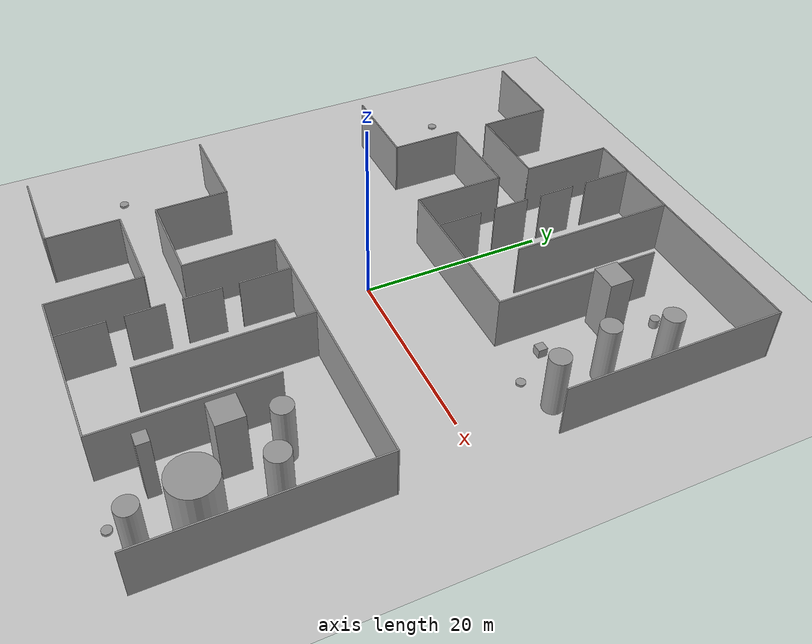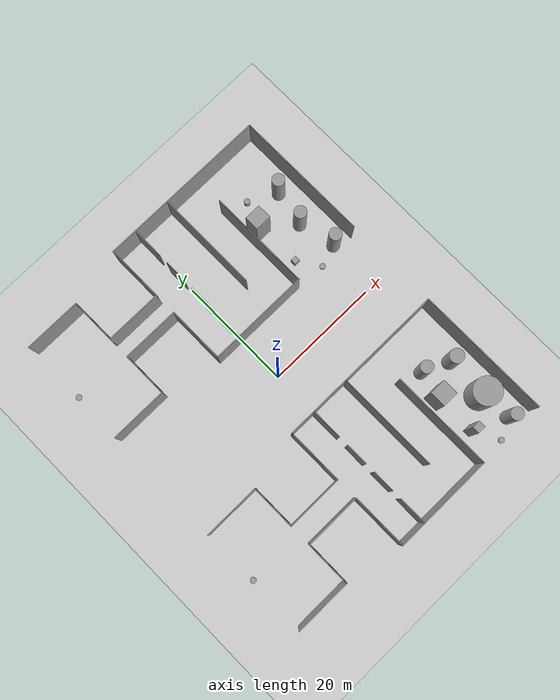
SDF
<sdf version="1.6">
 <world name="default">
  <light name="sun" type="directional">
   <pose>0 0 10 0 -0 0</pose>
   <diffuse>0.8 0.8 0.8 1</diffuse>
   <specular>0.2 0.2 0.2 1</specular>
   <attenuation>
    <range>1000</range>
    <constant>0.9</constant>
    <linear>0.01</linear>
    <quadratic>0.001</quadratic>
   </attenuation>
   <direction>-0.5 0.1 -0.9</direction>
  </light>
  <model name="ground_plane">
   <static>1</static>
   <link name="link">
    <collision name="collision">
     <geometry><plane><normal>0 0 1</normal><size>100 100</size></plane></geometry>
     <surface>
      <contact><collide_bitmask>65535</collide_bitmask></contact>
      <friction><ode><mu>100</mu><mu2>50</mu2></ode></friction>
     </surface>
    </collision>
    <visual name="visual">
     <cast_shadows>0</cast_shadows>
     <geometry><plane><normal>0 0 1</normal><size>100 100</size></plane></geometry>
     <material>
      <script><uri>file://media/materials/scripts/gazebo.material</uri><name>Gazebo/Grey</name></script>
     </material>
    </visual>
   </link>
  </model>
  <gravity>0 0 -9.8</gravity>
  <magnetic_field>6e-06 2.3e-05 -4.2e-05</magnetic_field>
  <atmosphere type="adiabatic"/>
  <physics name="default_physics" default="0" type="ode">
   <max_step_size>0.001</max_step_size>
   <real_time_factor>1</real_time_factor>
   <real_time_update_rate>1000</real_time_update_rate>
  </physics>
  <scene><ambient>0.4 0.4 0.4 1</ambient><background>0.7 0.7 0.7 1</background><shadows>1</shadows></scene>
  <spherical_coordinates>
   <surface_model>EARTH_WGS84</surface_model>
   <latitude_deg>0</latitude_deg>
   <longitude_deg>0</longitude_deg>
   <elevation>0</elevation>
   <heading_deg>0</heading_deg>
  </spherical_coordinates>
  <model name="train_0">
   <pose>0 20 0 0 -0 0</pose>
   <link name="Wall_11">
    <collision name="Wall_11_Collision">
     <geometry><box><size>10 0.15 6</size></box></geometry>
     <pose>0 0 3 0 -0 0</pose>
    </collision>
    <visual name="Wall_11_Visual">
     <pose>0 0 3 0 -0 0</pose>
     <geometry><box><size>10 0.15 6</size></box></geometry>
     <material>
      <script><uri>file://media/materials/scripts/gazebo.material</uri><name>Gazebo/Grey</name></script>
      <ambient>1 1 1 1</ambient>
     </material>
     <meta><layer>0</layer></meta>
    </visual>
    <pose>-9.98835 1.90003 0 0 -0 0</pose>
   </link>
   <link name="Wall_12">
    <collision name="Wall_12_Collision">
     <geometry><box><size>10 0.15 6</size></box></geometry>
     <pose>0 0 3 0 -0 0</pose>
    </collision>
    <visual name="Wall_12_Visual">
     <pose>0 0 3 0 -0 0</pose>
     <geometry><box><size>10 0.15 6</size></box></geometry>
     <material>
      <script><uri>file://media/materials/scripts/gazebo.material</uri><name>Gazebo/Grey</name></script>
      <ambient>1 1 1 1</ambient>
     </material>
     <meta><layer>0</layer></meta>
    </visual>
    <pose>-5.06335 6.82503 0 0 -0 1.5708</pose>
   </link>
   <link name="Wall_17">
    <collision name="Wall_17_Collision">
     <geometry><box><size>10.0469 0.15 6</size></box></geometry>
     <pose>0 0 3 0 -0 0</pose>
    </collision>
    <visual name="Wall_17_Visual">
     <pose>0 0 3 0 -0 0</pose>
     <geometry><box><size>10.0469 0.15 6</size></box></geometry>
     <material>
      <script><uri>file://media/materials/scripts/gazebo.material</uri><name>Gazebo/Grey</name></script>
      <ambient>1 1 1 1</ambient>
     </material>
     <meta><layer>0</layer></meta>
    </visual>
    <pose>-9.96489 -1.94997 0 0 -0 0</pose>
   </link>
   <link name="Wall_18">
    <collision name="Wall_18_Collision">
     <geometry><box><size>10 0.15 6</size></box></geometry>
     <pose>0 0 3 0 -0 0</pose>
    </collision>
    <visual name="Wall_18_Visual">
     <pose>0 0 3 0 -0 0</pose>
     <geometry><box><size>10 0.15 6</size></box></geometry>
     <material>
      <script><uri>file://media/materials/scripts/gazebo.material</uri><name>Gazebo/Grey</name></script>
      <ambient>1 1 1 1</ambient>
     </material>
     <meta><layer>0</layer></meta>
    </visual>
    <pose>-5.01199 -6.87497 0 0 0 -1.56989</pose>
   </link>
   <link name="Wall_26">
    <collision name="Wall_26_Collision">
     <geometry><box><size>5.5 0.15 6</size></box></geometry>
     <pose>0 0 3 0 -0 0</pose>
    </collision>
    <visual name="Wall_26_Visual">
     <pose>0 0 3 0 -0 0</pose>
     <geometry><box><size>5.5 0.15 6</size></box></geometry>
     <material>
      <script><uri>file://media/materials/scripts/gazebo.material</uri><name>Gazebo/Grey</name></script>
      <ambient>1 1 1 1</ambient>
     </material>
     <meta><layer>0</layer></meta>
    </visual>
    <pose>-0.299346 9.05303 0 0 0 -1.5708</pose>
   </link>
   <link name="Wall_28">
    <collision name="Wall_28_Collision">
     <geometry><box><size>4 0.15 6</size></box></geometry>
     <pose>0 0 3 0 -0 0</pose>
    </collision>
    <visual name="Wall_28_Visual">
     <pose>0 0 3 0 -0 0</pose>
     <geometry><box><size>4 0.15 6</size></box></geometry>
     <material>
      <script><uri>file://media/materials/scripts/gazebo.material</uri><name>Gazebo/Grey</name></script>
      <ambient>1 1 1 1</ambient>
     </material>
     <meta><layer>0</layer></meta>
    </visual>
    <pose>-0.299346 2.60303 0 0 0 -1.5708</pose>
   </link>
   <link name="Wall_30">
    <collision name="Wall_30_Collision">
     <geometry><box><size>4 0.15 6</size></box></geometry>
     <pose>0 0 3 0 -0 0</pose>
    </collision>
    <visual name="Wall_30_Visual">
     <pose>0 0 3 0 -0 0</pose>
     <geometry><box><size>4 0.15 6</size></box></geometry>
     <material>
      <script><uri>file://media/materials/scripts/gazebo.material</uri><name>Gazebo/Grey</name></script>
      <ambient>1 1 1 1</ambient>
     </material>
     <meta><layer>0</layer></meta>
    </visual>
    <pose>-0.299346 -3.09697 0 0 0 -1.5708</pose>
   </link>
   <link name="Wall_32">
    <collision name="Wall_32_Collision">
     <geometry><box><size>5 0.15 6</size></box></geometry>
     <pose>0 0 3 0 -0 0</pose>
    </collision>
    <visual name="Wall_32_Visual">
     <pose>0 0 3 0 -0 0</pose>
     <geometry><box><size>5 0.15 6</size></box></geometry>
     <material>
      <script><uri>file://media/materials/scripts/gazebo.material</uri><name>Gazebo/Grey</name></script>
      <ambient>1 1 1 1</ambient>
     </material>
     <meta><layer>0</layer></meta>
    </visual>
    <pose>-0.299346 -9.29697 0 0 0 -1.5708</pose>
   </link>
   <link name="Wall_35">
    <collision name="Wall_35_Collision">
     <geometry><box><size>18 0.15 6</size></box></geometry>
     <pose>0 0 3 0 -0 0</pose>
    </collision>
    <visual name="Wall_35_Visual">
     <pose>0 0 3 0 -0 0</pose>
     <geometry><box><size>18 0.15 6</size></box></geometry>
     <material>
      <script><uri>file://media/materials/scripts/gazebo.material</uri><name>Gazebo/Grey</name></script>
      <ambient>1 1 1 1</ambient>
     </material>
     <meta><layer>0</layer></meta>
    </visual>
    <pose>6.57165 2.82603 0 0 0 -1.5708</pose>
   </link>
   <link name="Wall_40">
    <collision name="Wall_40_Collision">
     <geometry><box><size>18 0.15 6</size></box></geometry>
     <pose>0 0 3 0 -0 0</pose>
    </collision>
    <visual name="Wall_40_Visual">
     <pose>0 0 3 0 -0 0</pose>
     <geometry><box><size>18 0.15 6</size></box></geometry>
     <material>
      <script><uri>file://media/materials/scripts/gazebo.material</uri><name>Gazebo/Grey</name></script>
      <ambient>1 1 1 1</ambient>
     </material>
     <meta><layer>0</layer></meta>
    </visual>
    <pose>12.5925 -2.87496 0 0 0 -1.5708</pose>
   </link>
   <link name="Wall_42">
    <collision name="Wall_42_Collision">
     <geometry><box><size>23.75 0.15 6</size></box></geometry>
     <pose>0 0 3 0 -0 0</pose>
    </collision>
    <visual name="Wall_42_Visual">
     <pose>0 0 3 0 -0 0</pose>
     <geometry><box><size>23.75 0.15 6</size></box></geometry>
     <material>
      <script><uri>file://media/materials/scripts/gazebo.material</uri><name>Gazebo/Grey</name></script>
      <ambient>1 1 1 1</ambient>
     </material>
     <meta><layer>0</layer></meta>
    </visual>
    <pose>24.7632 3.1e-05 0 0 -0 1.5708</pose>
   </link>
   <link name="Wall_43">
    <collision name="Wall_43_Collision">
     <geometry><box><size>29.9768 0.15 6</size></box></geometry>
     <pose>0 0 3 0 -0 0</pose>
    </collision>
    <visual name="Wall_43_Visual">
     <pose>0 0 3 0 -0 0</pose>
     <geometry><box><size>29.9768 0.15 6</size></box></geometry>
     <material>
      <script><uri>file://media/materials/scripts/gazebo.material</uri><name>Gazebo/Grey</name></script>
      <ambient>1 1 1 1</ambient>
     </material>
     <meta><layer>0</layer></meta>
    </visual>
    <pose>9.84993 11.8 0 0 -0 3.14159</pose>
   </link>
   <link name="Wall_46">
    <collision name="Wall_46_Collision">
     <geometry><box><size>17.75 0.15 6</size></box></geometry>
     <pose>0 0 3 0 -0 0</pose>
    </collision>
    <visual name="Wall_46_Visual">
     <pose>0 0 3 0 -0 0</pose>
     <geometry><box><size>17.75 0.15 6</size></box></geometry>
     <material>
      <script><uri>file://media/materials/scripts/gazebo.material</uri><name>Gazebo/Grey</name></script>
      <ambient>1 1 1 1</ambient>
     </material>
     <meta><layer>0</layer></meta>
    </visual>
    <pose>3.79245 -11.8 0 0 -0 0</pose>
   </link>
   <link name="Wall_5">
    <collision name="Wall_5_Collision">
     <geometry><box><size>10 0.15 6</size></box></geometry>
     <pose>0 0 3 0 -0 0</pose>
    </collision>
    <visual name="Wall_5_Visual">
     <pose>0 0 3 0 -0 0</pose>
     <geometry><box><size>10 0.15 6</size></box></geometry>
     <material>
      <script><uri>file://media/materials/scripts/gazebo.material</uri><name>Gazebo/Grey</name></script>
      <ambient>1 1 1 1</ambient>
     </material>
     <meta><layer>0</layer></meta>
    </visual>
    <pose>-19.8383 9.75003 0 0 -0 0</pose>
   </link>
   <link name="Wall_6">
    <collision name="Wall_6_Collision">
     <geometry><box><size>8 0.15 6</size></box></geometry>
     <pose>0 0 3 0 -0 0</pose>
    </collision>
    <visual name="Wall_6_Visual">
     <pose>0 0 3 0 -0 0</pose>
     <geometry><box><size>8 0.15 6</size></box></geometry>
     <material>
      <script><uri>file://media/materials/scripts/gazebo.material</uri><name>Gazebo/Grey</name></script>
      <ambient>1 1 1 1</ambient>
     </material>
     <meta><layer>0</layer></meta>
    </visual>
    <pose>-14.9133 5.82503 0 0 0 -1.5708</pose>
   </link>
   <link name="Wall_8">
    <collision name="Wall_8_Collision">
     <geometry><box><size>8 0.15 6</size></box></geometry>
     <pose>0 0 3 0 -0 0</pose>
    </collision>
    <visual name="Wall_8_Visual">
     <pose>0 0 3 0 -0 0</pose>
     <geometry><box><size>8 0.15 6</size></box></geometry>
     <material>
      <script><uri>file://media/materials/scripts/gazebo.material</uri><name>Gazebo/Grey</name></script>
      <ambient>1 1 1 1</ambient>
     </material>
     <meta><layer>0</layer></meta>
    </visual>
    <pose>-14.9133 -5.87497 0 0 0 -1.5708</pose>
   </link>
   <link name="Wall_9">
    <collision name="Wall_9_Collision">
     <geometry><box><size>10 0.15 6</size></box></geometry>
     <pose>0 0 3 0 -0 0</pose>
    </collision>
    <visual name="Wall_9_Visual">
     <pose>0 0 3 0 -0 0</pose>
     <geometry><box><size>10 0.15 6</size></box></geometry>
     <material>
      <script><uri>file://media/materials/scripts/gazebo.material</uri><name>Gazebo/Grey</name></script>
      <ambient>1 1 1 1</ambient>
     </material>
     <meta><layer>0</layer></meta>
    </visual>
    <pose>-19.8383 -9.79997 0 0 -0 3.14159</pose>
   </link>
   <static>1</static>
  </model>
  <model name="train_0_clone">
   <pose>0 -20 0 0 -0 0</pose>
   <link name="Wall_11">
    <collision name="Wall_11_Collision">
     <geometry><box><size>10 0.15 6</size></box></geometry>
     <pose>0 0 3 0 -0 0</pose>
    </collision>
    <visual name="Wall_11_Visual">
     <pose>0 0 3 0 -0 0</pose>
     <geometry><box><size>10 0.15 6</size></box></geometry>
     <material>
      <script><uri>file://media/materials/scripts/gazebo.material</uri><name>Gazebo/Grey</name></script>
      <ambient>1 1 1 1</ambient>
     </material>
     <meta><layer>0</layer></meta>
    </visual>
    <pose>-9.98835 1.90003 0 0 -0 0</pose>
   </link>
   <link name="Wall_12">
    <collision name="Wall_12_Collision">
     <geometry><box><size>10 0.15 6</size></box></geometry>
     <pose>0 0 3 0 -0 0</pose>
    </collision>
    <visual name="Wall_12_Visual">
     <pose>0 0 3 0 -0 0</pose>
     <geometry><box><size>10 0.15 6</size></box></geometry>
     <material>
      <script><uri>file://media/materials/scripts/gazebo.material</uri><name>Gazebo/Grey</name></script>
      <ambient>1 1 1 1</ambient>
     </material>
     <meta><layer>0</layer></meta>
    </visual>
    <pose>-5.06335 6.82503 0 0 -0 1.5708</pose>
   </link>
   <link name="Wall_17">
    <collision name="Wall_17_Collision">
     <geometry><box><size>10.0469 0.15 6</size></box></geometry>
     <pose>0 0 3 0 -0 0</pose>
    </collision>
    <visual name="Wall_17_Visual">
     <pose>0 0 3 0 -0 0</pose>
     <geometry><box><size>10.0469 0.15 6</size></box></geometry>
     <material>
      <script><uri>file://media/materials/scripts/gazebo.material</uri><name>Gazebo/Grey</name></script>
      <ambient>1 1 1 1</ambient>
     </material>
     <meta><layer>0</layer></meta>
    </visual>
    <pose>-9.96489 -1.94997 0 0 -0 0</pose>
   </link>
   <link name="Wall_18">
    <collision name="Wall_18_Collision">
     <geometry><box><size>10 0.15 6</size></box></geometry>
     <pose>0 0 3 0 -0 0</pose>
    </collision>
    <visual name="Wall_18_Visual">
     <pose>0 0 3 0 -0 0</pose>
     <geometry><box><size>10 0.15 6</size></box></geometry>
     <material>
      <script><uri>file://media/materials/scripts/gazebo.material</uri><name>Gazebo/Grey</name></script>
      <ambient>1 1 1 1</ambient>
     </material>
     <meta><layer>0</layer></meta>
    </visual>
    <pose>-5.01199 -6.87497 0 0 0 -1.56989</pose>
   </link>
   <link name="Wall_26">
    <collision name="Wall_26_Collision">
     <geometry><box><size>5.5 0.15 6</size></box></geometry>
     <pose>0 0 3 0 -0 0</pose>
    </collision>
    <visual name="Wall_26_Visual">
     <pose>0 0 3 0 -0 0</pose>
     <geometry><box><size>5.5 0.15 6</size></box></geometry>
     <material>
      <script><uri>file://media/materials/scripts/gazebo.material</uri><name>Gazebo/Grey</name></script>
      <ambient>1 1 1 1</ambient>
     </material>
     <meta><layer>0</layer></meta>
    </visual>
    <pose>-0.299346 9.05303 0 0 0 -1.5708</pose>
   </link>
   <link name="Wall_28">
    <collision name="Wall_28_Collision">
     <geometry><box><size>4 0.15 6</size></box></geometry>
     <pose>0 0 3 0 -0 0</pose>
    </collision>
    <visual name="Wall_28_Visual">
     <pose>0 0 3 0 -0 0</pose>
     <geometry><box><size>4 0.15 6</size></box></geometry>
     <material>
      <script><uri>file://media/materials/scripts/gazebo.material</uri><name>Gazebo/Grey</name></script>
      <ambient>1 1 1 1</ambient>
     </material>
     <meta><layer>0</layer></meta>
    </visual>
    <pose>-0.299346 2.60303 0 0 0 -1.5708</pose>
   </link>
   <link name="Wall_30">
    <collision name="Wall_30_Collision">
     <geometry><box><size>4 0.15 6</size></box></geometry>
     <pose>0 0 3 0 -0 0</pose>
    </collision>
    <visual name="Wall_30_Visual">
     <pose>0 0 3 0 -0 0</pose>
     <geometry><box><size>4 0.15 6</size></box></geometry>
     <material>
      <script><uri>file://media/materials/scripts/gazebo.material</uri><name>Gazebo/Grey</name></script>
      <ambient>1 1 1 1</ambient>
     </material>
     <meta><layer>0</layer></meta>
    </visual>
    <pose>-0.299346 -3.09697 0 0 0 -1.5708</pose>
   </link>
   <link name="Wall_32">
    <collision name="Wall_32_Collision">
     <geometry><box><size>5 0.15 6</size></box></geometry>
     <pose>0 0 3 0 -0 0</pose>
    </collision>
    <visual name="Wall_32_Visual">
     <pose>0 0 3 0 -0 0</pose>
     <geometry><box><size>5 0.15 6</size></box></geometry>
     <material>
      <script><uri>file://media/materials/scripts/gazebo.material</uri><name>Gazebo/Grey</name></script>
      <ambient>1 1 1 1</ambient>
     </material>
     <meta><layer>0</layer></meta>
    </visual>
    <pose>-0.299346 -9.29697 0 0 0 -1.5708</pose>
   </link>
   <link name="Wall_35">
    <collision name="Wall_35_Collision">
     <geometry><box><size>18 0.15 6</size></box></geometry>
     <pose>0 0 3 0 -0 0</pose>
    </collision>
    <visual name="Wall_35_Visual">
     <pose>0 0 3 0 -0 0</pose>
     <geometry><box><size>18 0.15 6</size></box></geometry>
     <material>
      <script><uri>file://media/materials/scripts/gazebo.material</uri><name>Gazebo/Grey</name></script>
      <ambient>1 1 1 1</ambient>
     </material>
     <meta><layer>0</layer></meta>
    </visual>
    <pose>6.57165 2.82603 0 0 0 -1.5708</pose>
   </link>
   <link name="Wall_40">
    <collision name="Wall_40_Collision">
     <geometry><box><size>18 0.15 6</size></box></geometry>
     <pose>0 0 3 0 -0 0</pose>
    </collision>
    <visual name="Wall_40_Visual">
     <pose>0 0 3 0 -0 0</pose>
     <geometry><box><size>18 0.15 6</size></box></geometry>
     <material>
      <script><uri>file://media/materials/scripts/gazebo.material</uri><name>Gazebo/Grey</name></script>
      <ambient>1 1 1 1</ambient>
     </material>
     <meta><layer>0</layer></meta>
    </visual>
    <pose>12.5925 -2.87496 0 0 0 -1.5708</pose>
   </link>
   <link name="Wall_42">
    <collision name="Wall_42_Collision">
     <geometry><box><size>23.75 0.15 6</size></box></geometry>
     <pose>0 0 3 0 -0 0</pose>
    </collision>
    <visual name="Wall_42_Visual">
     <pose>0 0 3 0 -0 0</pose>
     <geometry><box><size>23.75 0.15 6</size></box></geometry>
     <material>
      <script><uri>file://media/materials/scripts/gazebo.material</uri><name>Gazebo/Grey</name></script>
      <ambient>1 1 1 1</ambient>
     </material>
     <meta><layer>0</layer></meta>
    </visual>
    <pose>24.7632 3.1e-05 0 0 -0 1.5708</pose>
   </link>
   <link name="Wall_43">
    <collision name="Wall_43_Collision">
     <geometry><box><size>29.9768 0.15 6</size></box></geometry>
     <pose>0 0 3 0 -0 0</pose>
    </collision>
    <visual name="Wall_43_Visual">
     <pose>0 0 3 0 -0 0</pose>
     <geometry><box><size>29.9768 0.15 6</size></box></geometry>
     <material>
      <script><uri>file://media/materials/scripts/gazebo.material</uri><name>Gazebo/Grey</name></script>
      <ambient>1 1 1 1</ambient>
     </material>
     <meta><layer>0</layer></meta>
    </visual>
    <pose>9.84993 11.8 0 0 -0 3.14159</pose>
   </link>
   <link name="Wall_46">
    <collision name="Wall_46_Collision">
     <geometry><box><size>17.75 0.15 6</size></box></geometry>
     <pose>0 0 3 0 -0 0</pose>
    </collision>
    <visual name="Wall_46_Visual">
     <pose>0 0 3 0 -0 0</pose>
     <geometry><box><size>17.75 0.15 6</size></box></geometry>
     <material>
      <script><uri>file://media/materials/scripts/gazebo.material</uri><name>Gazebo/Grey</name></script>
      <ambient>1 1 1 1</ambient>
     </material>
     <meta><layer>0</layer></meta>
    </visual>
    <pose>3.79245 -11.8 0 0 -0 0</pose>
   </link>
   <link name="Wall_5">
    <collision name="Wall_5_Collision">
     <geometry><box><size>10 0.15 6</size></box></geometry>
     <pose>0 0 3 0 -0 0</pose>
    </collision>
    <visual name="Wall_5_Visual">
     <pose>0 0 3 0 -0 0</pose>
     <geometry><box><size>10 0.15 6</size></box></geometry>
     <material>
      <script><uri>file://media/materials/scripts/gazebo.material</uri><name>Gazebo/Grey</name></script>
      <ambient>1 1 1 1</ambient>
     </material>
     <meta><layer>0</layer></meta>
    </visual>
    <pose>-19.8383 9.75003 0 0 -0 0</pose>
   </link>
   <link name="Wall_6">
    <collision name="Wall_6_Collision">
     <geometry><box><size>8 0.15 6</size></box></geometry>
     <pose>0 0 3 0 -0 0</pose>
    </collision>
    <visual name="Wall_6_Visual">
     <pose>0 0 3 0 -0 0</pose>
     <geometry><box><size>8 0.15 6</size></box></geometry>
     <material>
      <script><uri>file://media/materials/scripts/gazebo.material</uri><name>Gazebo/Grey</name></script>
      <ambient>1 1 1 1</ambient>
     </material>
     <meta><layer>0</layer></meta>
    </visual>
    <pose>-14.9133 5.82503 0 0 0 -1.5708</pose>
   </link>
   <link name="Wall_8">
    <collision name="Wall_8_Collision">
     <geometry><box><size>8 0.15 6</size></box></geometry>
     <pose>0 0 3 0 -0 0</pose>
    </collision>
    <visual name="Wall_8_Visual">
     <pose>0 0 3 0 -0 0</pose>
     <geometry><box><size>8 0.15 6</size></box></geometry>
     <material>
      <script><uri>file://media/materials/scripts/gazebo.material</uri><name>Gazebo/Grey</name></script>
      <ambient>1 1 1 1</ambient>
     </material>
     <meta><layer>0</layer></meta>
    </visual>
    <pose>-14.9133 -5.87497 0 0 0 -1.5708</pose>
   </link>
   <link name="Wall_9">
    <collision name="Wall_9_Collision">
     <geometry><box><size>10 0.15 6</size></box></geometry>
     <pose>0 0 3 0 -0 0</pose>
    </collision>
    <visual name="Wall_9_Visual">
     <pose>0 0 3 0 -0 0</pose>
     <geometry><box><size>10 0.15 6</size></box></geometry>
     <material>
      <script><uri>file://media/materials/scripts/gazebo.material</uri><name>Gazebo/Grey</name></script>
      <ambient>1 1 1 1</ambient>
     </material>
     <meta><layer>0</layer></meta>
    </visual>
    <pose>-19.8383 -9.79997 0 0 -0 3.14159</pose>
   </link>
   <static>1</static>
  </model>
  <model name="unit_cylinder">
   <pose>16.6813 24.3285 0.49999 0 -0 0.014626</pose>
   <link name="link">
    <inertial>
     <mass>1</mass>
     <inertia><ixx>0.145833</ixx><ixy>0</ixy><ixz>0</ixz><iyy>0.145833</iyy><iyz>0</iyz><izz>0.125</izz></inertia>
    </inertial>
    <collision name="collision">
     <geometry><cylinder><radius>0.500001</radius><length>0.999998</length></cylinder></geometry>
    </collision>
    <visual name="visual">
     <geometry><cylinder><radius>0.500001</radius><length>0.999998</length></cylinder></geometry>
     <material>
      <script><name>Gazebo/Grey</name><uri>file://media/materials/scripts/gazebo.material</uri></script>
     </material>
    </visual>
   </link>
  </model>
  <model name="unit_cylinder_clone">
   <pose>21.4879 21.8325 3.35386 1e-06 -0 0.015213</pose>
   <link name="link">
    <inertial>
     <mass>1</mass>
     <inertia><ixx>0.145833</ixx><ixy>0</ixy><ixz>0</ixz><iyy>0.145833</iyy><iyz>0</iyz><izz>0.125</izz></inertia>
    </inertial>
    <collision name="collision">
     <geometry><cylinder><radius>1.09331</radius><length>6.70775</length></cylinder></geometry>
    </collision>
    <visual name="visual">
     <geometry><cylinder><radius>1.09331</radius><length>6.70775</length></cylinder></geometry>
     <material>
      <script><name>Gazebo/Grey</name><uri>file://media/materials/scripts/gazebo.material</uri></script>
     </material>
    </visual>
   </link>
  </model>
  <model name="unit_cylinder_clone_1">
   <pose>20.2698 15.6483 3.35387 0 -0 0.01735</pose>
   <link name="link">
    <inertial>
     <mass>1</mass>
     <inertia><ixx>0.145833</ixx><ixy>0</ixy><ixz>0</ixz><iyy>0.145833</iyy><iyz>0</iyz><izz>0.125</izz></inertia>
    </inertial>
    <collision name="collision">
     <geometry><cylinder><radius>1.09331</radius><length>6.70775</length></cylinder></geometry>
    </collision>
    <visual name="visual">
     <geometry><cylinder><radius>1.09331</radius><length>6.70775</length></cylinder></geometry>
     <material>
      <script><name>Gazebo/Grey</name><uri>file://media/materials/scripts/gazebo.material</uri></script>
     </material>
    </visual>
   </link>
  </model>
  <model name="unit_cylinder_clone_3">
   <pose>21.7009 9.246 3.35386 1e-06 -0 0.014285</pose>
   <link name="link">
    <inertial>
     <mass>1</mass>
     <inertia><ixx>0.145833</ixx><ixy>0</ixy><ixz>0</ixz><iyy>0.145833</iyy><iyz>0</iyz><izz>0.125</izz></inertia>
    </inertial>
    <collision name="collision">
     <geometry><cylinder><radius>1.09331</radius><length>6.70775</length></cylinder></geometry>
    </collision>
    <visual name="visual">
     <geometry><cylinder><radius>1.09331</radius><length>6.70775</length></cylinder></geometry>
     <material>
      <script><name>Gazebo/Grey</name><uri>file://media/materials/scripts/gazebo.material</uri></script>
     </material>
    </visual>
   </link>
  </model>
  <model name="unit_box">
   <pose>15.3784 11.7265 0.500001 0 0 -0.000478</pose>
   <link name="link">
    <inertial>
     <mass>1</mass>
     <inertia>
      <ixx>0.166667</ixx>
      <ixy>0</ixy>
      <ixz>0</ixz>
      <iyy>0.166667</iyy>
      <iyz>0</iyz>
      <izz>0.166667</izz>
     </inertia>
    </inertial>
    <collision name="collision"><geometry><box><size>0.999996 1 1</size></box></geometry></collision>
    <visual name="visual">
     <geometry><box><size>0.999996 1 1</size></box></geometry>
     <material>
      <script><name>Gazebo/Grey</name><uri>file://media/materials/scripts/gazebo.material</uri></script>
     </material>
    </visual>
   </link>
  </model>
  <model name="unit_box_clone">
   <pose>14.7657 19.5734 3.58491 0 2e-06 -0.000578</pose>
   <link name="link">
    <inertial>
     <mass>1</mass>
     <inertia>
      <ixx>0.166667</ixx>
      <ixy>0</ixy>
      <ixz>0</ixz>
      <iyy>0.166667</iyy>
      <iyz>0</iyz>
      <izz>0.166667</izz>
     </inertia>
    </inertial>
    <collision name="collision"><geometry><box><size>2.86929 2.55668 7.16981</size></box></geometry></collision>
    <visual name="visual">
     <geometry><box><size>2.86929 2.55668 7.16981</size></box></geometry>
     <material>
      <script><name>Gazebo/Grey</name><uri>file://media/materials/scripts/gazebo.material</uri></script>
     </material>
    </visual>
   </link>
  </model>
  <model name="unit_cylinder_clone_1_clone">
   <pose>20.7808 -24.5992 3.35387 1e-06 -0 0.017742</pose>
   <link name="link">
    <inertial>
     <mass>1</mass>
     <inertia><ixx>0.145833</ixx><ixy>0</ixy><ixz>0</ixz><iyy>0.145833</iyy><iyz>0</iyz><izz>0.125</izz></inertia>
    </inertial>
    <collision name="collision">
     <geometry><cylinder><radius>2.39438</radius><length>6.70775</length></cylinder></geometry>
    </collision>
    <visual name="visual">
     <geometry><cylinder><radius>2.39438</radius><length>6.70775</length></cylinder></geometry>
     <material>
      <script><name>Gazebo/Grey</name><uri>file://media/materials/scripts/gazebo.material</uri></script>
     </material>
    </visual>
   </link>
  </model>
  <model name="unit_cylinder_clone_3_clone">
   <pose>21.4653 -30.1237 3.35386 1e-06 -0 0.014125</pose>
   <link name="link">
    <inertial>
     <mass>1</mass>
     <inertia><ixx>0.145833</ixx><ixy>0</ixy><ixz>0</ixz><iyy>0.145833</iyy><iyz>0</iyz><izz>0.125</izz></inertia>
    </inertial>
    <collision name="collision">
     <geometry><cylinder><radius>1.09331</radius><length>6.70775</length></cylinder></geometry>
    </collision>
    <visual name="visual">
     <geometry><cylinder><radius>1.09331</radius><length>6.70775</length></cylinder></geometry>
     <material>
      <script><name>Gazebo/Grey</name><uri>file://media/materials/scripts/gazebo.material</uri></script>
     </material>
    </visual>
   </link>
  </model>
  <model name="unit_box_clone_0">
   <pose>15.707 -27.392 3.58491 0 0 -0.000315</pose>
   <link name="link">
    <inertial>
     <mass>1</mass>
     <inertia>
      <ixx>0.166667</ixx>
      <ixy>0</ixy>
      <ixz>0</ixz>
      <iyy>0.166667</iyy>
      <iyz>0</iyz>
      <izz>0.166667</izz>
     </inertia>
    </inertial>
    <collision name="collision"><geometry><box><size>1.41335 1.27866 7.16981</size></box></geometry></collision>
    <visual name="visual">
     <geometry><box><size>1.41335 1.27866 7.16981</size></box></geometry>
     <material>
      <script><name>Gazebo/Grey</name><uri>file://media/materials/scripts/gazebo.material</uri></script>
     </material>
    </visual>
   </link>
  </model>
  <model name="unit_box_clone_clone">
   <pose>15.6839 -20.1218 3.58491 0 -1e-06 -0.000579</pose>
   <link name="link">
    <inertial>
     <mass>1</mass>
     <inertia>
      <ixx>0.166667</ixx>
      <ixy>0</ixy>
      <ixz>0</ixz>
      <iyy>0.166667</iyy>
      <iyz>0</iyz>
      <izz>0.166667</izz>
     </inertia>
    </inertial>
    <collision name="collision"><geometry><box><size>2.86929 2.8102 7.16981</size></box></geometry></collision>
    <visual name="visual">
     <geometry><box><size>2.86929 2.8102 7.16981</size></box></geometry>
     <material>
      <script><name>Gazebo/Grey</name><uri>file://media/materials/scripts/gazebo.material</uri></script>
     </material>
    </visual>
   </link>
  </model>
  <model name="unit_cylinder_clone_clone">
   <pose>21.3492 -17.5069 3.35387 0 -0 0.015312</pose>
   <link name="link">
    <inertial>
     <mass>1</mass>
     <inertia><ixx>0.145833</ixx><ixy>0</ixy><ixz>0</ixz><iyy>0.145833</iyy><iyz>0</iyz><izz>0.125</izz></inertia>
    </inertial>
    <collision name="collision">
     <geometry><cylinder><radius>1.23016</radius><length>6.70775</length></cylinder></geometry>
    </collision>
    <visual name="visual">
     <geometry><cylinder><radius>1.23016</radius><length>6.70775</length></cylinder></geometry>
     <material>
      <script><name>Gazebo/Grey</name><uri>file://media/materials/scripts/gazebo.material</uri></script>
     </material>
    </visual>
   </link>
  </model>
  <model name="unit_cylinder_clone_0">
   <pose>16.8263 -15.4719 3.35386 1e-06 -0 0.014343</pose>
   <link name="link">
    <inertial>
     <mass>1</mass>
     <inertia><ixx>0.145833</ixx><ixy>0</ixy><ixz>0</ixz><iyy>0.145833</iyy><iyz>0</iyz><izz>0.125</izz></inertia>
    </inertial>
    <collision name="collision">
     <geometry><cylinder><radius>1.09331</radius><length>6.70775</length></cylinder></geometry>
    </collision>
    <visual name="visual">
     <geometry><cylinder><radius>1.09331</radius><length>6.70775</length></cylinder></geometry>
     <material>
      <script><name>Gazebo/Grey</name><uri>file://media/materials/scripts/gazebo.material</uri></script>
     </material>
    </visual>
   </link>
  </model>
  <model name="unit_cylinder_0">
   <pose>18 8 0.110311 0 -0 0</pose>
   <link name="link">
    <inertial>
     <mass>1</mass>
     <inertia><ixx>0.145833</ixx><ixy>0</ixy><ixz>0</ixz><iyy>0.145833</iyy><iyz>0</iyz><izz>0.125</izz></inertia>
    </inertial>
    <collision name="collision">
     <geometry><cylinder><radius>0.5</radius><length>0.220624</length></cylinder></geometry>
    </collision>
    <visual name="visual">
     <geometry><cylinder><radius>0.5</radius><length>0.220624</length></cylinder></geometry>
     <material>
      <script><name>Gazebo/Grey</name><uri>file://media/materials/scripts/gazebo.material</uri></script>
     </material>
    </visual>
   </link>
  </model>
  <model name="unit_cylinder_1">
   <pose>-25 20 0.101583 0 -0 0</pose>
   <link name="link">
    <inertial>
     <mass>1</mass>
     <inertia><ixx>0.145833</ixx><ixy>0</ixy><ixz>0</ixz><iyy>0.145833</iyy><iyz>0</iyz><izz>0.125</izz></inertia>
    </inertial>
    <collision name="collision">
     <geometry><cylinder><radius>0.5</radius><length>0.203166</length></cylinder></geometry>
    </collision>
    <visual name="visual">
     <geometry><cylinder><radius>0.5</radius><length>0.203166</length></cylinder></geometry>
     <material>
      <script><name>Gazebo/Grey</name><uri>file://media/materials/scripts/gazebo.material</uri></script>
     </material>
    </visual>
   </link>
  </model>
  <model name="unit_cylinder_0_clone">
   <pose>-25 -20 0.134858 -3e-06 -3e-06 0</pose>
   <link name="link">
    <inertial>
     <mass>1</mass>
     <inertia><ixx>0.145833</ixx><ixy>0</ixy><ixz>0</ixz><iyy>0.145833</iyy><iyz>0</iyz><izz>0.125</izz></inertia>
    </inertial>
    <collision name="collision">
     <geometry><cylinder><radius>0.5</radius><length>0.269726</length></cylinder></geometry>
    </collision>
    <visual name="visual">
     <geometry><cylinder><radius>0.5</radius><length>0.269726</length></cylinder></geometry>
     <material>
      <script><name>Gazebo/Grey</name><uri>file://media/materials/scripts/gazebo.material</uri></script>
     </material>
    </visual>
   </link>
  </model>
  <model name="unit_cylinder_0_clone_0">
   <pose>18.2418 -32 0.134854 0 -0 0</pose>
   <link name="link">
    <inertial>
     <mass>1</mass>
     <inertia><ixx>0.145833</ixx><ixy>0</ixy><ixz>0</ixz><iyy>0.145833</iyy><iyz>0</iyz><izz>0.125</izz></inertia>
    </inertial>
    <collision name="collision">
     <geometry><cylinder><radius>0.5</radius><length>0.269726</length></cylinder></geometry>
    </collision>
    <visual name="visual">
     <geometry><cylinder><radius>0.5</radius><length>0.269726</length></cylinder></geometry>
     <material>
      <script><name>Gazebo/Grey</name><uri>file://media/materials/scripts/gazebo.material</uri></script>
     </material>
    </visual>
   </link>
  </model>
 </world>
</sdf>
